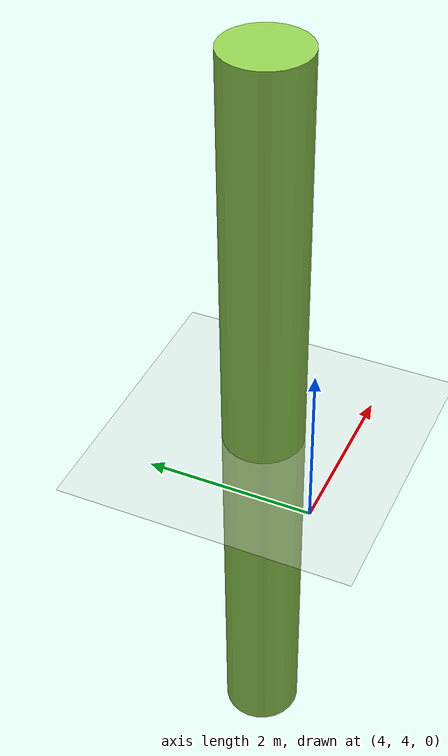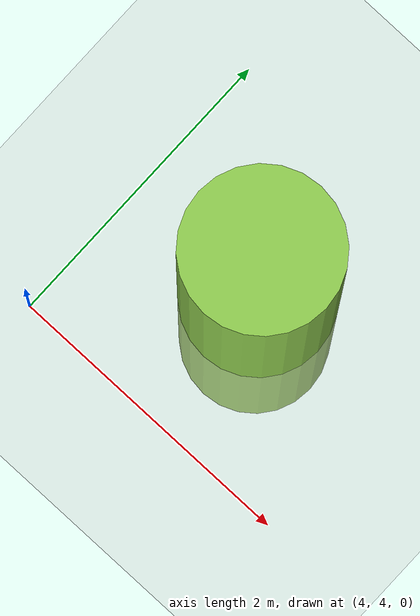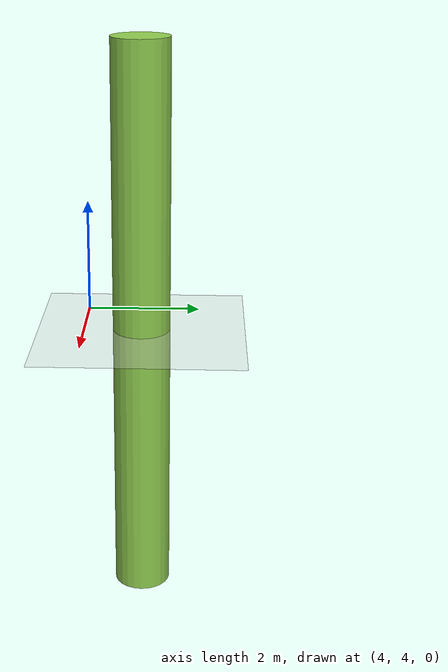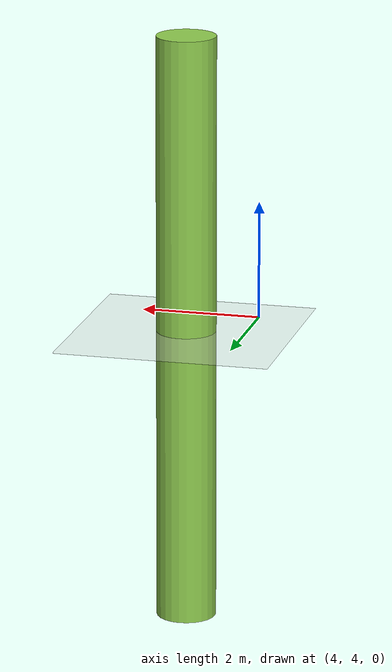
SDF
<?xml version="1.0" ?>
<sdf version="1.5">
  <world name="default">
    <!-- A global light source -->
    <include>
      <uri>model://sun</uri>
    </include>
    <!-- A ground plane -->
    <include>
      <uri>model://ground_plane</uri>
    </include>
    <include>
      <uri>model://asphalt_plane</uri>
    </include>

    <model name="obstacles">
      <static>true</static>
      <link name="obstacles_link">
	<visual name="obstacle1">
          <pose>5 5 -0.001 0 0 0</pose>
	  <geometry>
            <cylinder>
              <radius>0.5</radius>
              <length>10</length>
            </cylinder>
          </geometry>
	  <material>
   	    <ambient>0.57 0.8125 0.3125 1</ambient>
	    <diffuse>0.57 0.8125 0.3125 1</diffuse>
	    <specular>0.1 0.1 0.1 1</specular>
            <emissive>0 0 0 0</emissive>
  	  </material>
	</visual>
      </link>
    </model>

    <physics name='default_physics' default='0' type='ode'>
      <gravity>0 0 -9.8066</gravity>
      <ode>
        <solver>
          <type>quick</type>
          <iters>10</iters>
          <sor>1.3</sor>
          <use_dynamic_moi_rescaling>0</use_dynamic_moi_rescaling>
        </solver>
        <constraints>
          <cfm>0</cfm>
          <erp>0.2</erp>
          <contact_max_correcting_vel>100</contact_max_correcting_vel>
          <contact_surface_layer>0.001</contact_surface_layer>
        </constraints>
      </ode>
      <max_step_size>0.004</max_step_size>
      <real_time_factor>1</real_time_factor>
      <real_time_update_rate>250</real_time_update_rate>
      <magnetic_field>6.0e-6 2.3e-5 -4.2e-5</magnetic_field>
    </physics>
  </world>
</sdf>
